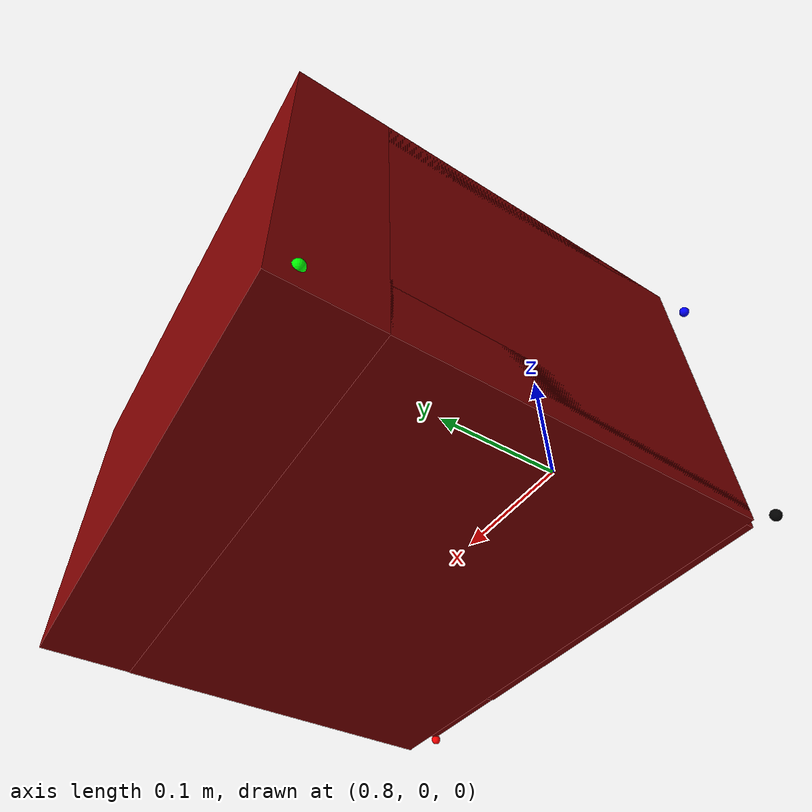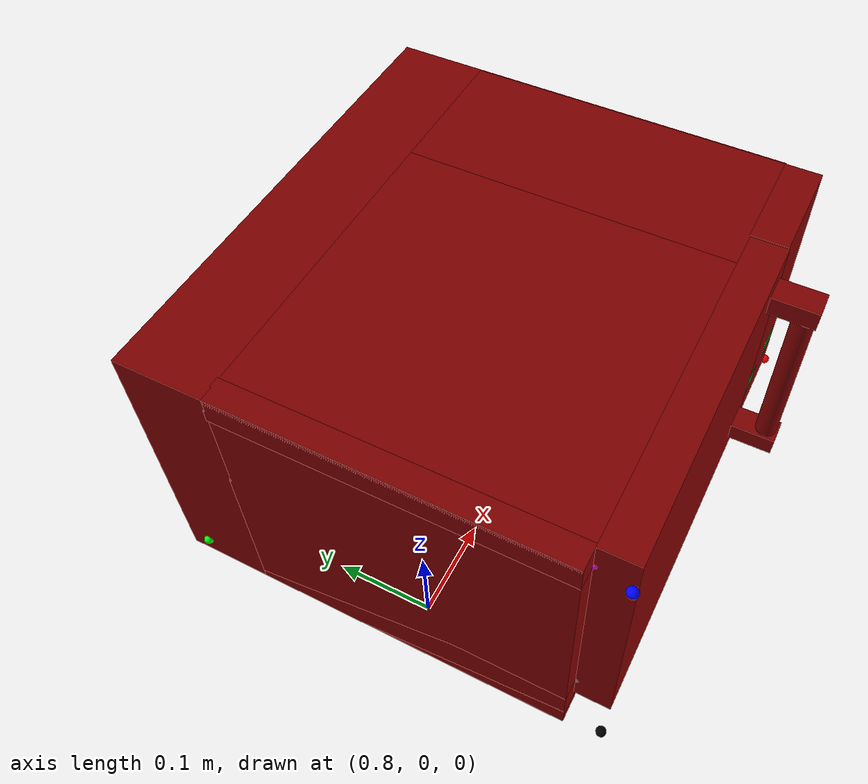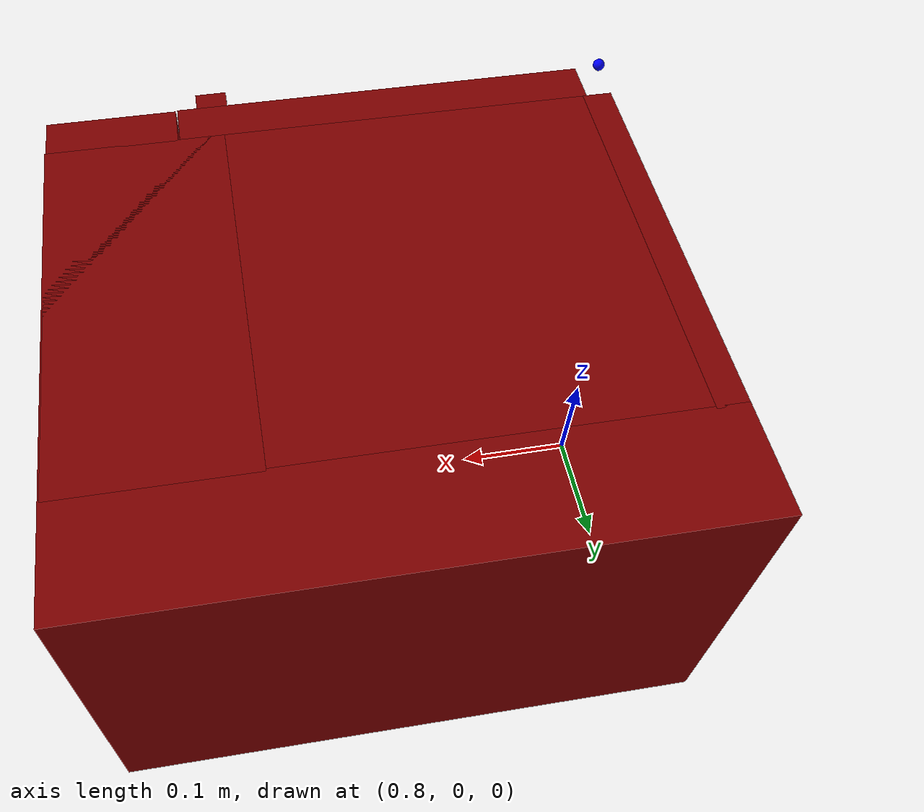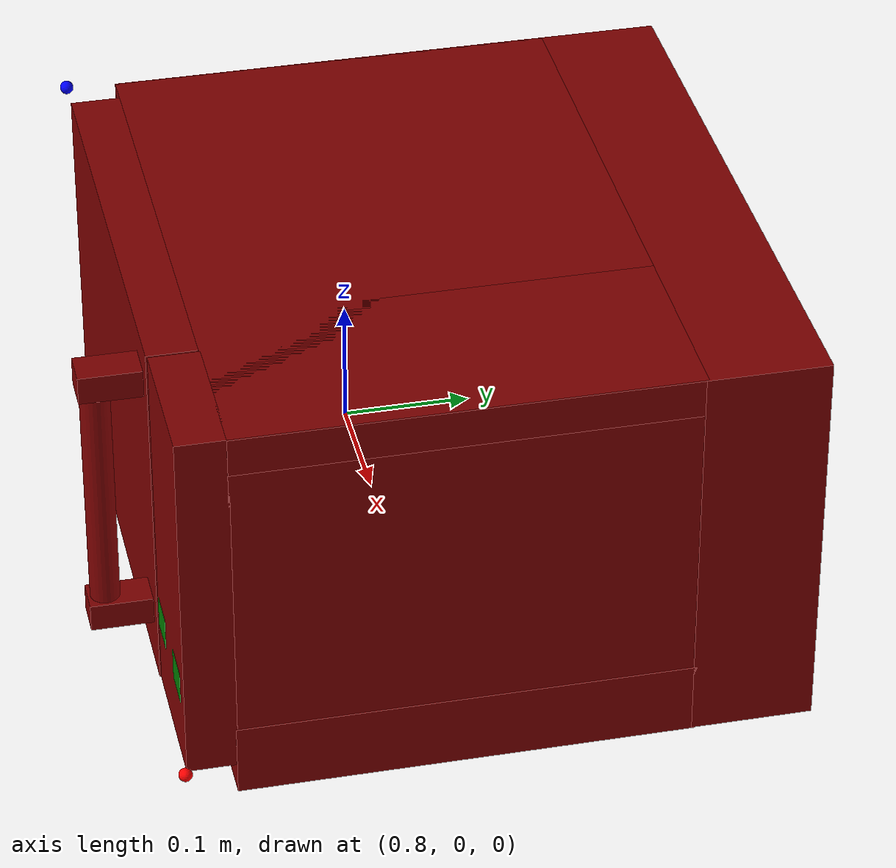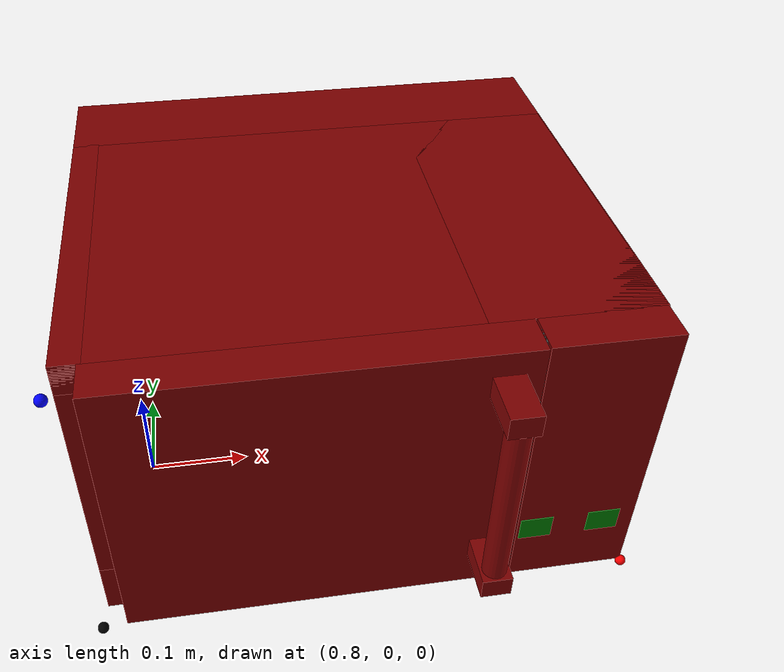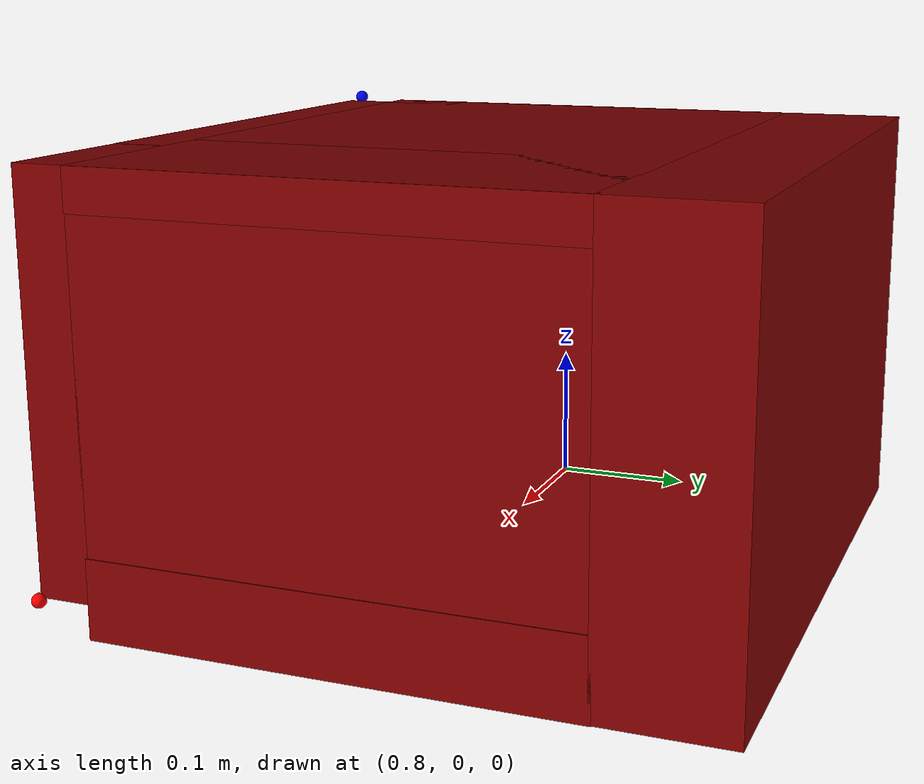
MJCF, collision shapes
<mujoco model="model">
  <compiler angle="radian"/>
  <asset>
    <texture file="visuals/material_0.png" name="tex-model" type="2d"/>
    <texture type="2d" name="image7" file="visuals/image7.png"/>
    <texture type="2d" name="image2" file="visuals/image2.png"/>
    <texture type="2d" name="image5" file="visuals/image5.png"/>
    <material name="model" reflectance="0.5" texrepeat="1 1" texture="tex-model" texuniform="false"/>
    <material name="TX_Microwave_3_1" texture="image7" specular="0.5" shininess="0.25"/>
    <material name="TX_Microwave_3_2" texture="image2" specular="0.5" shininess="0.25"/>
    <material name="TX_Microwave_3_3" texture="image5" specular="0.5" shininess="0.25"/>
    <mesh file="visuals/model_0.obj" name="model_0_vis" scale="0.5 0.5 0.5"/>
    <mesh file="visuals/model_1.obj" name="model_1_vis" scale="0.5 0.5 0.5"/>
    <mesh file="visuals/model_2.obj" name="model_2_vis" scale="0.5 0.5 0.5"/>
    <mesh file="visuals/door_0.obj" name="door_0_vis" scale="0.5 0.5 0.5"/>
    <mesh file="visuals/door_1.obj" name="door_1_vis" scale="0.5 0.5 0.5"/>
    <mesh file="visuals/door_2.obj" name="door_2_vis" scale="0.5 0.5 0.5"/>
  </asset>
  <default>
    <default class="visual">
      <geom conaffinity="0" contype="0" group="1" type="mesh"/>
    </default>
    <default class="collision">
      <geom group="0" rgba="0.5 0 0 0.5"/>
    </default>
  </default>
  <worldbody>
    <body>
      <body name="object" pos="1 0 0.15">
        <geom solimp="0.998 0.998 0.001" solref="0.001 1" density="100" friction="0.95 0.3 0.1" type="mesh" mesh="model_0_vis" material="TX_Microwave_3_2" class="visual"/>
        <geom solimp="0.998 0.998 0.001" solref="0.001 1" density="100" friction="0.95 0.3 0.1" type="mesh" mesh="model_1_vis" material="TX_Microwave_3_3" class="visual"/>
        <geom solimp="0.998 0.998 0.001" solref="0.001 1" density="100" friction="0.95 0.3 0.1" type="mesh" mesh="model_2_vis" material="TX_Microwave_3_1" class="visual"/>
        <!-- Numpad inside fix -->
        <geom class="visual" type="box" rgba="0.4 0.4 0.4 1" pos="0.18 -0.1845 0.0145" size="0.0475 0.0165 0.125"/>
        <geom class="visual" type="box" rgba="0.4 0.4 0.4 1" pos="0.18 -0.181 0.145" size="0.0475 0.015 0.0055"/>
        <geom class="visual" type="box" rgba="0.4 0.4 0.4 1" pos="0.18 -0.1815 -0.119" size="0.0475 0.015 0.0085"/>
        <!-- Back -->
        <geom class="collision" type="box" pos="0 0.21 0" size="0.2425 0.045 0.151"/>
        <!-- Bottom -->
        <geom class="collision" type="box" pos="0 0 -0.124" size="0.2425 0.167 0.0275"/>
        <!-- Left -->
        <geom class="collision" type="box" pos="-0.23 0 0" size="0.0125 0.167 0.151"/>
        <!-- Right -->
        <geom class="collision" type="box" pos="0.1675 0 0" size="0.074 0.167 0.151"/>
        <!-- Top -->
        <geom class="collision" type="box" pos="0 0 0.1365" size="0.2425 0.167 0.0145"/>
        <!-- Numpad -->
        <geom class="collision" type="box" pos="0.187 -0.1845 0.0115" size="0.0545 0.0185 0.1395"/>
        <!-- start/stop buttons -->
        <geom class="collision" type="box" pos="0.2125 -0.1925 -0.065" size="0.015 0.0108 0.0125" name="start_button" rgba="0.0 0.5 0 0.5"/>
        <geom class="collision" type="box" pos="0.15 -0.1925 -0.065" size="0.015 0.0108 0.0125" name="stop_button" rgba="0.0 0.5 0 0.5"/>
        <geom class="collision" type="cylinder" pos="-0.06 -0.01 -0.0975" size="0.11 0.0025" rgba="0 1 0 0.5" name="tray"/>
        <body name="door">
          <joint axis="0 0 1" limited="true" name="microjoint" range="-1.57 0" damping="2" frictionloss="2" armature=".01" pos="-0.2425 -0.167 0" ref="0"/>
          <geom solimp="0.998 0.998 0.001" solref="0.001 1" density="100" friction="0.95 0.3 0.1" type="mesh" mesh="door_0_vis" material="TX_Microwave_3_2" class="visual"/>
          <geom solimp="0.998 0.998 0.001" solref="0.001 1" density="100" friction="0.95 0.3 0.1" type="mesh" mesh="door_1_vis" material="TX_Microwave_3_3" class="visual"/>
          <geom solimp="0.998 0.998 0.001" solref="0.001 1" density="100" friction="0.95 0.3 0.1" type="mesh" mesh="door_2_vis" material="TX_Microwave_3_1" class="visual"/>
          <!-- Door Main -->
          <geom class="collision" type="box" pos="-0.045 -0.1855 0.0115" size="0.17595 0.0185 0.1395"/>
          <!-- Handle Top -->
          <geom class="collision" type="box" pos="0.102 -0.2265 0.118" size="0.0135 0.0235 0.0105"/>
          <!-- Handle Bottom -->
          <geom class="collision" type="box" pos="0.102 -0.2265 -0.0795" size="0.0135 0.0235 0.0105"/>
          <!-- Handle Main -->
          <geom class="collision" type="cylinder" pos="0.102 -0.237 0.0195" size="0.011 0.09 0" name="door_handle"/>
          <!-- door sites -->
          <site rgba="1 0 0 0" size="0.0025" pos="-0.0375 -0.20 0.005" name="door_p1"/>
          <site rgba="0 1 0 0" size="0.0025" pos="-0.0125 -0.20 0.005" name="door_p2"/>
          <site rgba="0 0 1 0" size="0.0025" pos="-0.0375 -0.20 0.03" name="door_p3"/>
        </body>
        <!-- exterior bounding box points -->
        <site rgba="0 0 0 1" size="0.005" pos="-0.2425 -0.204 -0.13" name="ext_p0"/>
        <site rgba="1 0 0 1" size="0.005" pos="0.2425 -0.204 -0.13" name="ext_px"/>
        <site rgba="0 1 0 1" size="0.005" pos="-0.2425 0.2325 -0.13" name="ext_py"/>
        <site rgba="0 0 1 1" size="0.005" pos="-0.2425 -0.204 0.1525" name="ext_pz"/>
        <!-- interior bounding box points -->
        <site rgba="0.5 0.5 0.5 1" size="0.005" pos="-0.2175 -0.167 -0.10" name="int_p0"/>
        <site rgba="0 1 1 1" size="0.005" pos="0.0935 -0.167 -0.10" name="int_px"/>
        <site rgba="1 1 0 1" size="0.005" pos="-0.2175 0.165 -0.10" name="int_py"/>
        <site rgba="1 0 1 1" size="0.005" pos="-0.2175 -0.167 0.122" name="int_pz"/>
      </body>
    </body>
  </worldbody>
</mujoco>
